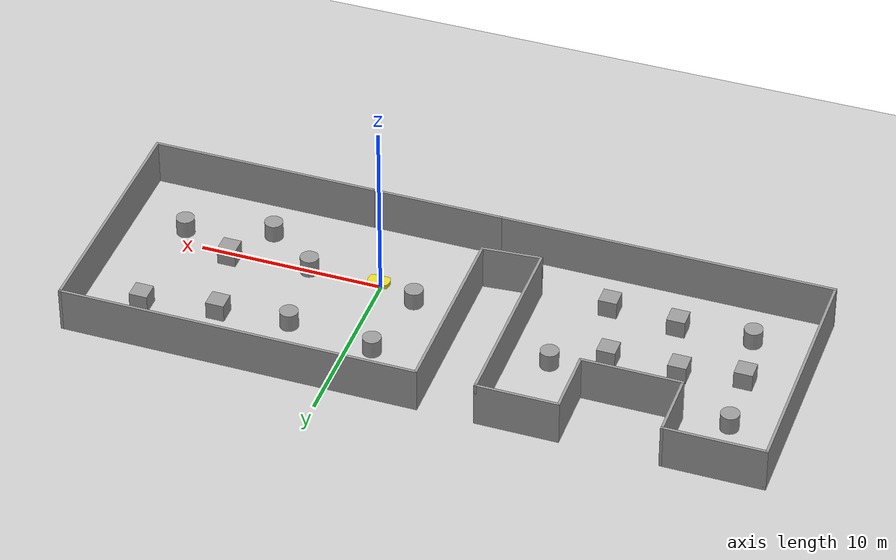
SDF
<sdf version="1.7">
 <world name="default">
  <light name="sun" type="directional">
   <pose>0 0 10 0 -0 0</pose>
   <diffuse>0.8 0.8 0.8 1</diffuse>
   <specular>0.2 0.2 0.2 1</specular>
   <attenuation>
    <range>1000</range>
    <constant>0.9</constant>
    <linear>0.01</linear>
    <quadratic>0.001</quadratic>
   </attenuation>
   <direction>-0.5 0.1 -0.9</direction>
   <spot><inner_angle>0</inner_angle><outer_angle>0</outer_angle><falloff>0</falloff></spot>
  </light>
  <model name="ground_plane">
   <static>1</static>
   <link name="link">
    <collision name="collision">
     <geometry><plane><normal>0 0 1</normal><size>100 100</size></plane></geometry>
     <surface><friction><ode><mu>100</mu><mu2>50</mu2></ode></friction></surface>
    </collision>
    <visual name="visual">
     <cast_shadows>0</cast_shadows>
     <geometry><plane><normal>0 0 1</normal><size>100 100</size></plane></geometry>
     <material>
      <script><uri>file://media/materials/scripts/gazebo.material</uri><name>Gazebo/Grey</name></script>
     </material>
    </visual>
   </link>
  </model>
  <gravity>0 0 -9.8</gravity>
  <magnetic_field>6e-06 2.3e-05 -4.2e-05</magnetic_field>
  <atmosphere type="adiabatic"/>
  <physics type="ode">
   <max_step_size>0.001</max_step_size>
   <real_time_factor>1</real_time_factor>
   <real_time_update_rate>1000</real_time_update_rate>
  </physics>
  <scene><ambient>0.4 0.4 0.4 1</ambient><background>0.7 0.7 0.7 1</background><shadows>1</shadows></scene>
  <audio><device>default</device></audio>
  <spherical_coordinates>
   <surface_model>EARTH_WGS84</surface_model>
   <latitude_deg>0</latitude_deg>
   <longitude_deg>0</longitude_deg>
   <elevation>0</elevation>
   <heading_deg>0</heading_deg>
  </spherical_coordinates>
  <model name="my_bot">
   <link name="base_footprint">
    <inertial>
     <pose>-0 -0 0.135442 0 -0 0</pose>
     <mass>202.122</mass>
     <inertia>
      <ixx>9.54112</ixx>
      <ixy>-9.2157e-16</ixy>
      <ixz>-5.72723e-16</ixz>
      <iyy>22.6678</iyy>
      <iyz>-4.76165e-17</iyz>
      <izz>30.0778</izz>
     </inertia>
    </inertial>
    <collision name="base_footprint_fixed_joint_lump__base_link_collision">
     <geometry>
      <mesh>
       <scale>1 1 1</scale>
       <uri>file:///home/ender/Desktop/dev_ws/install/my_bot/share/my_bot/meshes/base_link.STL</uri>
      </mesh>
     </geometry>
    </collision>
    <collision name="base_footprint_fixed_joint_lump__lidar_link_collision_1">
     <pose>0 0 0.29909 0 -0 0</pose>
     <geometry>
      <mesh>
       <scale>1 1 1</scale>
       <uri>file:///home/ender/Desktop/dev_ws/install/my_bot/share/my_bot/meshes/lidar_link.STL</uri>
      </mesh>
     </geometry>
    </collision>
    <visual name="base_footprint_fixed_joint_lump__base_link_visual">
     <geometry>
      <mesh>
       <scale>1 1 1</scale>
       <uri>file:///home/ender/Desktop/dev_ws/install/my_bot/share/my_bot/meshes/base_link.STL</uri>
      </mesh>
     </geometry>
     <material>
      <script><name>Gazebo/Yellow</name><uri>file://media/materials/scripts/gazebo.material</uri></script>
     </material>
    </visual>
    <visual name="base_footprint_fixed_joint_lump__lidar_link_visual_1">
     <pose>0 0 0.29909 0 -0 0</pose>
     <geometry>
      <mesh>
       <scale>1 1 1</scale>
       <uri>file:///home/ender/Desktop/dev_ws/install/my_bot/share/my_bot/meshes/lidar_link.STL</uri>
      </mesh>
     </geometry>
     <material>
      <script><name>Gazebo/Orange</name><uri>file://media/materials/scripts/gazebo.material</uri></script>
     </material>
    </visual>
    <sensor name="front_hokuyo_sensor" type="ray">
     <visualize>0</visualize>
     <update_rate>10</update_rate>
     <ray>
      <scan>
       <horizontal>
        <samples>360</samples>
        <min_angle>-3.14</min_angle>
        <max_angle>3.14</max_angle>
        <resolution>1</resolution>
       </horizontal>
       <vertical><samples>1</samples><min_angle>0</min_angle><max_angle>0</max_angle></vertical>
      </scan>
      <range><min>0.3</min><max>12</max></range>
     </ray>
     <plugin name="gazebo_ros_head_hokuyo_controller" filename="libgazebo_ros_ray_sensor.so">
      <ros><argument>~/out:=scan</argument></ros>
      <output_type>sensor_msgs/LaserScan</output_type>
      <frame_name>lidar_link</frame_name>
     </plugin>
     <pose>0 0 0.29909 0 -0 0</pose>
    </sensor>
   </link>
   <joint name="leftwheel" type="revolute">
    <pose relative_to="base_footprint">0 0.406 0.018995 0 -0 0</pose>
    <parent>base_footprint</parent>
    <child>left_wheel</child>
    <axis>
     <xyz>0 1 0</xyz>
     <limit><lower>-1e+16</lower><upper>1e+16</upper></limit>
     <dynamics>
      <damping>0</damping>
      <friction>0.1</friction>
      <spring_reference>0</spring_reference>
      <spring_stiffness>0</spring_stiffness>
     </dynamics>
    </axis>
   </joint>
   <link name="left_wheel">
    <pose relative_to="leftwheel">0 0 0 0 -0 0</pose>
    <inertial>
     <pose>0 -0.02 0 0 -0 0</pose>
     <mass>0.80425</mass>
     <inertia>
      <ixx>0.001394</ixx>
      <ixy>6.1901e-35</ixy>
      <ixz>7.1778e-51</ixz>
      <iyy>0.0025736</iyy>
      <iyz>2.4867e-36</iyz>
      <izz>0.001394</izz>
     </inertia>
    </inertial>
    <collision name="left_wheel_collision">
     <geometry>
      <mesh>
       <scale>1 1 1</scale>
       <uri>file:///home/ender/Desktop/dev_ws/install/my_bot/share/my_bot/meshes/left_wheel.STL</uri>
      </mesh>
     </geometry>
    </collision>
    <visual name="left_wheel_visual">
     <geometry>
      <mesh>
       <scale>1 1 1</scale>
       <uri>file:///home/ender/Desktop/dev_ws/install/my_bot/share/my_bot/meshes/left_wheel.STL</uri>
      </mesh>
     </geometry>
     <material>
      <script><name>Gazebo/Black</name><uri>file://media/materials/scripts/gazebo.material</uri></script>
     </material>
    </visual>
   </link>
   <joint name="rightwheel" type="revolute">
    <pose relative_to="base_footprint">0 -0.406 0.018995 0 -0 0</pose>
    <parent>base_footprint</parent>
    <child>right_wheel</child>
    <axis>
     <xyz>0 1 0</xyz>
     <limit><lower>-1e+16</lower><upper>1e+16</upper></limit>
     <dynamics>
      <damping>0</damping>
      <friction>0.1</friction>
      <spring_reference>0</spring_reference>
      <spring_stiffness>0</spring_stiffness>
     </dynamics>
    </axis>
   </joint>
   <link name="right_wheel">
    <pose relative_to="rightwheel">0 0 0 0 -0 0</pose>
    <inertial>
     <pose>0 0.02 0 0 -0 0</pose>
     <mass>0.80425</mass>
     <inertia>
      <ixx>0.001394</ixx>
      <ixy>6.1901e-35</ixy>
      <ixz>7.1778e-51</ixz>
      <iyy>0.0025736</iyy>
      <iyz>2.4867e-36</iyz>
      <izz>0.001394</izz>
     </inertia>
    </inertial>
    <collision name="right_wheel_collision">
     <geometry>
      <mesh>
       <scale>1 1 1</scale>
       <uri>file:///home/ender/Desktop/dev_ws/install/my_bot/share/my_bot/meshes/right_wheel.STL</uri>
      </mesh>
     </geometry>
    </collision>
    <visual name="right_wheel_visual">
     <geometry>
      <mesh>
       <scale>1 1 1</scale>
       <uri>file:///home/ender/Desktop/dev_ws/install/my_bot/share/my_bot/meshes/right_wheel.STL</uri>
      </mesh>
     </geometry>
     <material>
      <script><name>Gazebo/Black</name><uri>file://media/materials/scripts/gazebo.material</uri></script>
     </material>
    </visual>
   </link>
   <static>0</static>
   <plugin name="diff_drive" filename="libgazebo_ros_diff_drive.so">
    <left_joint>leftwheel</left_joint>
    <right_joint>rightwheel</right_joint>
    <wheel_separation>0.812</wheel_separation>
    <wheel_diameter>0.16</wheel_diameter>
    <max_wheel_acceleration>50.0</max_wheel_acceleration>
    <max_wheel_torque>200</max_wheel_torque>
    <odometry_frame>odom</odometry_frame>
    <robot_base_frame>base_footprint</robot_base_frame>
    <publish_odom>1</publish_odom>
    <publish_odom_tf>1</publish_odom_tf>
    <publish_wheel_tf>1</publish_wheel_tf>
   </plugin>
   <pose>0.168629 -0.196517 0.06065 1.7e-05 0.002946 0.026211</pose>
  </model>
  <model name="Untitled">
   <pose>-4.35455 1.88069 0 0 -0 0</pose>
   <link name="Wall_1">
    <collision name="Wall_1_Collision">
     <geometry><box><size>10.5 0.15 2.5</size></box></geometry>
     <pose>0 0 1.25 0 -0 0</pose>
    </collision>
    <visual name="Wall_1_Visual">
     <pose>0 0 1.25 0 -0 0</pose>
     <geometry><box><size>10.5 0.15 2.5</size></box></geometry>
     <material>
      <script><uri>file://media/materials/scripts/gazebo.material</uri><name>Gazebo/Grey</name></script>
      <ambient>1 1 1 1</ambient>
     </material>
     <meta><layer>0</layer></meta>
    </visual>
    <pose>-0.575 1.375 0 0 -0 1.5708</pose>
   </link>
   <link name="Wall_10">
    <collision name="Wall_10_Collision">
     <geometry><box><size>5.5 0.15 2.5</size></box></geometry>
     <pose>0 0 1.25 0 -0 0</pose>
    </collision>
    <visual name="Wall_10_Visual">
     <pose>0 0 1.25 0 -0 0</pose>
     <geometry><box><size>5.5 0.15 2.5</size></box></geometry>
     <material>
      <script><uri>file://media/materials/scripts/gazebo.material</uri><name>Gazebo/Grey</name></script>
      <ambient>1 1 1 1</ambient>
     </material>
     <meta><layer>0</layer></meta>
    </visual>
    <pose>-10.75 2.95 0 0 -0 0</pose>
   </link>
   <link name="Wall_11">
    <collision name="Wall_11_Collision">
     <geometry><box><size>3.75 0.15 2.5</size></box></geometry>
     <pose>0 0 1.25 0 -0 0</pose>
    </collision>
    <visual name="Wall_11_Visual">
     <pose>0 0 1.25 0 -0 0</pose>
     <geometry><box><size>3.75 0.15 2.5</size></box></geometry>
     <material>
      <script><uri>file://media/materials/scripts/gazebo.material</uri><name>Gazebo/Grey</name></script>
      <ambient>1 1 1 1</ambient>
     </material>
     <meta><layer>0</layer></meta>
    </visual>
    <pose>-8.075 4.75 0 0 -0 1.5708</pose>
   </link>
   <link name="Wall_12">
    <collision name="Wall_12_Collision">
     <geometry><box><size>4.5 0.15 2.5</size></box></geometry>
     <pose>0 0 1.25 0 -0 0</pose>
    </collision>
    <visual name="Wall_12_Visual">
     <pose>0 0 1.25 0 -0 0</pose>
     <geometry><box><size>4.5 0.15 2.5</size></box></geometry>
     <material>
      <script><uri>file://media/materials/scripts/gazebo.material</uri><name>Gazebo/Grey</name></script>
      <ambient>1 1 1 1</ambient>
     </material>
     <meta><layer>0</layer></meta>
    </visual>
    <pose>-5.9 6.55 0 0 -0 0</pose>
   </link>
   <link name="Wall_13">
    <collision name="Wall_13_Collision">
     <geometry><box><size>10.75 0.15 2.5</size></box></geometry>
     <pose>0 0 1.25 0 -0 0</pose>
    </collision>
    <visual name="Wall_13_Visual">
     <pose>0 0 1.25 0 -0 0</pose>
     <geometry><box><size>10.75 0.15 2.5</size></box></geometry>
     <material>
      <script><uri>file://media/materials/scripts/gazebo.material</uri><name>Gazebo/Grey</name></script>
      <ambient>1 1 1 1</ambient>
     </material>
     <meta><layer>0</layer></meta>
    </visual>
    <pose>-3.725 1.25 0 0 -0 -1.5708</pose>
   </link>
   <link name="Wall_14">
    <collision name="Wall_14_Collision">
     <geometry><box><size>3.30991 0.15 2.5</size></box></geometry>
     <pose>0 0 1.25 0 -0 0</pose>
    </collision>
    <visual name="Wall_14_Visual">
     <pose>0 0 1.25 0 -0 0</pose>
     <geometry><box><size>3.30991 0.15 2.5</size></box></geometry>
     <material>
      <script><uri>file://media/materials/scripts/gazebo.material</uri><name>Gazebo/Grey</name></script>
      <ambient>1 1 1 1</ambient>
     </material>
     <meta><layer>0</layer></meta>
    </visual>
    <pose>-2.15 -3.925 0 0 -0 0.079199</pose>
   </link>
   <link name="Wall_2">
    <collision name="Wall_2_Collision">
     <geometry><box><size>19.5 0.15 2.5</size></box></geometry>
     <pose>0 0 1.25 0 -0 0</pose>
    </collision>
    <visual name="Wall_2_Visual">
     <pose>0 0 1.25 0 -0 0</pose>
     <geometry><box><size>19.5 0.15 2.5</size></box></geometry>
     <material>
      <script><uri>file://media/materials/scripts/gazebo.material</uri><name>Gazebo/Grey</name></script>
      <ambient>1 1 1 1</ambient>
     </material>
     <meta><layer>0</layer></meta>
    </visual>
    <pose>9.1 6.55 0 0 -0 0</pose>
   </link>
   <link name="Wall_3">
    <collision name="Wall_3_Collision">
     <geometry><box><size>13.25 0.15 2.5</size></box></geometry>
     <pose>0 0 1.25 0 -0 0</pose>
    </collision>
    <visual name="Wall_3_Visual">
     <pose>0 0 1.25 0 -0 0</pose>
     <geometry><box><size>13.25 0.15 2.5</size></box></geometry>
     <material>
      <script><uri>file://media/materials/scripts/gazebo.material</uri><name>Gazebo/Grey</name></script>
      <ambient>1 1 1 1</ambient>
     </material>
     <meta><layer>0</layer></meta>
    </visual>
    <pose>18.775 0 0 0 -0 -1.5708</pose>
   </link>
   <link name="Wall_4">
    <collision name="Wall_4_Collision">
     <geometry><box><size>12.5 0.15 2.5</size></box></geometry>
     <pose>0 0 1.25 0 -0 0</pose>
    </collision>
    <visual name="Wall_4_Visual">
     <pose>0 0 1.25 0 -0 0</pose>
     <geometry><box><size>12.5 0.15 2.5</size></box></geometry>
     <material>
      <script><uri>file://media/materials/scripts/gazebo.material</uri><name>Gazebo/Grey</name></script>
      <ambient>1 1 1 1</ambient>
     </material>
     <meta><layer>0</layer></meta>
    </visual>
    <pose>12.6 -6.55 0 0 -0 3.14159</pose>
   </link>
   <link name="Wall_5">
    <collision name="Wall_5_Collision">
     <geometry><box><size>7.25 0.15 2.5</size></box></geometry>
     <pose>0 0 1.25 0 -0 0</pose>
    </collision>
    <visual name="Wall_5_Visual">
     <pose>0 0 1.25 0 -0 0</pose>
     <geometry><box><size>7.25 0.15 2.5</size></box></geometry>
     <material>
      <script><uri>file://media/materials/scripts/gazebo.material</uri><name>Gazebo/Grey</name></script>
      <ambient>1 1 1 1</ambient>
     </material>
     <meta><layer>0</layer></meta>
    </visual>
    <pose>2.875 -6.55 0 0 -0 3.14159</pose>
   </link>
   <link name="Wall_6">
    <collision name="Wall_6_Collision">
     <geometry><box><size>18.25 0.15 2.5</size></box></geometry>
     <pose>0 0 1.25 0 -0 0</pose>
    </collision>
    <visual name="Wall_6_Visual">
     <pose>0 0 1.25 0 -0 0</pose>
     <geometry><box><size>18.25 0.15 2.5</size></box></geometry>
     <material>
      <script><uri>file://media/materials/scripts/gazebo.material</uri><name>Gazebo/Grey</name></script>
      <ambient>1 1 1 1</ambient>
     </material>
     <meta><layer>0</layer></meta>
    </visual>
    <pose>-9.725 -6.55 0 0 -0 3.14159</pose>
   </link>
   <link name="Wall_7">
    <collision name="Wall_7_Collision">
     <geometry><box><size>13.25 0.15 2.5</size></box></geometry>
     <pose>0 0 1.25 0 -0 0</pose>
    </collision>
    <visual name="Wall_7_Visual">
     <pose>0 0 1.25 0 -0 0</pose>
     <geometry><box><size>13.25 0.15 2.5</size></box></geometry>
     <material>
      <script><uri>file://media/materials/scripts/gazebo.material</uri><name>Gazebo/Grey</name></script>
      <ambient>1 1 1 1</ambient>
     </material>
     <meta><layer>0</layer></meta>
    </visual>
    <pose>-18.775 0 0 0 -0 1.5708</pose>
   </link>
   <link name="Wall_8">
    <collision name="Wall_8_Collision">
     <geometry><box><size>5.5 0.15 2.5</size></box></geometry>
     <pose>0 0 1.25 0 -0 0</pose>
    </collision>
    <visual name="Wall_8_Visual">
     <pose>0 0 1.25 0 -0 0</pose>
     <geometry><box><size>5.5 0.15 2.5</size></box></geometry>
     <material>
      <script><uri>file://media/materials/scripts/gazebo.material</uri><name>Gazebo/Grey</name></script>
      <ambient>1 1 1 1</ambient>
     </material>
     <meta><layer>0</layer></meta>
    </visual>
    <pose>-16.1 6.55 0 0 -0 0</pose>
   </link>
   <link name="Wall_9">
    <collision name="Wall_9_Collision">
     <geometry><box><size>3.75 0.15 2.5</size></box></geometry>
     <pose>0 0 1.25 0 -0 0</pose>
    </collision>
    <visual name="Wall_9_Visual">
     <pose>0 0 1.25 0 -0 0</pose>
     <geometry><box><size>3.75 0.15 2.5</size></box></geometry>
     <material>
      <script><uri>file://media/materials/scripts/gazebo.material</uri><name>Gazebo/Grey</name></script>
      <ambient>1 1 1 1</ambient>
     </material>
     <meta><layer>0</layer></meta>
    </visual>
    <pose>-13.425 4.75 0 0 -0 -1.5708</pose>
   </link>
   <static>1</static>
  </model>
  <model name="unit_box">
   <pose>7.2333 4.76616 0.499995 1e-05 -0 0</pose>
   <link name="link">
    <inertial>
     <mass>1</mass>
     <inertia>
      <ixx>0.166667</ixx>
      <ixy>0</ixy>
      <ixz>0</ixz>
      <iyy>0.166667</iyy>
      <iyz>0</iyz>
      <izz>0.166667</izz>
     </inertia>
    </inertial>
    <collision name="collision"><geometry><box><size>1 1 1</size></box></geometry></collision>
    <visual name="visual">
     <geometry><box><size>1 1 1</size></box></geometry>
     <material>
      <script><name>Gazebo/Grey</name><uri>file://media/materials/scripts/gazebo.material</uri></script>
     </material>
    </visual>
   </link>
  </model>
  <model name="unit_box_0">
   <pose>8.31648 0.42598 0.499995 0 -1e-05 0</pose>
   <link name="link">
    <inertial>
     <mass>1</mass>
     <inertia>
      <ixx>0.166667</ixx>
      <ixy>0</ixy>
      <ixz>0</ixz>
      <iyy>0.166667</iyy>
      <iyz>0</iyz>
      <izz>0.166667</izz>
     </inertia>
    </inertial>
    <collision name="collision"><geometry><box><size>1 1 1</size></box></geometry></collision>
    <visual name="visual">
     <geometry><box><size>1 1 1</size></box></geometry>
     <material>
      <script><name>Gazebo/Grey</name><uri>file://media/materials/scripts/gazebo.material</uri></script>
     </material>
    </visual>
   </link>
  </model>
  <model name="unit_cylinder">
   <pose>-1.32685 5.01169 0.499992 -3e-06 3e-06 0</pose>
   <link name="link">
    <inertial>
     <mass>1</mass>
     <inertia><ixx>0.145833</ixx><ixy>0</ixy><ixz>0</ixz><iyy>0.145833</iyy><iyz>0</iyz><izz>0.125</izz></inertia>
    </inertial>
    <collision name="collision">
     <geometry><cylinder><radius>0.5</radius><length>1</length></cylinder></geometry>
    </collision>
    <visual name="visual">
     <geometry><cylinder><radius>0.5</radius><length>1</length></cylinder></geometry>
     <material>
      <script><name>Gazebo/Grey</name><uri>file://media/materials/scripts/gazebo.material</uri></script>
     </material>
    </visual>
   </link>
  </model>
  <model name="unit_cylinder_0">
   <pose>3.42659 4.43957 0.499992 -3e-06 3e-06 0</pose>
   <link name="link">
    <inertial>
     <mass>1</mass>
     <inertia><ixx>0.145833</ixx><ixy>0</ixy><ixz>0</ixz><iyy>0.145833</iyy><iyz>0</iyz><izz>0.125</izz></inertia>
    </inertial>
    <collision name="collision">
     <geometry><cylinder><radius>0.5</radius><length>1</length></cylinder></geometry>
    </collision>
    <visual name="visual">
     <geometry><cylinder><radius>0.5</radius><length>1</length></cylinder></geometry>
     <material>
      <script><name>Gazebo/Grey</name><uri>file://media/materials/scripts/gazebo.material</uri></script>
     </material>
    </visual>
   </link>
  </model>
  <model name="unit_cylinder_1">
   <pose>3.98187 -0.013738 0.499992 -3e-06 3e-06 0</pose>
   <link name="link">
    <inertial>
     <mass>1</mass>
     <inertia><ixx>0.145833</ixx><ixy>0</ixy><ixz>0</ixz><iyy>0.145833</iyy><iyz>0</iyz><izz>0.125</izz></inertia>
    </inertial>
    <collision name="collision">
     <geometry><cylinder><radius>0.5</radius><length>1</length></cylinder></geometry>
    </collision>
    <visual name="visual">
     <geometry><cylinder><radius>0.5</radius><length>1</length></cylinder></geometry>
     <material>
      <script><name>Gazebo/Grey</name><uri>file://media/materials/scripts/gazebo.material</uri></script>
     </material>
    </visual>
   </link>
  </model>
  <model name="unit_cylinder_2">
   <pose>-2.08273 0.692973 0.499997 3e-06 -4e-06 0</pose>
   <link name="link">
    <inertial>
     <mass>1</mass>
     <inertia><ixx>0.145833</ixx><ixy>0</ixy><ixz>0</ixz><iyy>0.145833</iyy><iyz>0</iyz><izz>0.125</izz></inertia>
    </inertial>
    <collision name="collision">
     <geometry><cylinder><radius>0.5</radius><length>1</length></cylinder></geometry>
    </collision>
    <visual name="visual">
     <geometry><cylinder><radius>0.5</radius><length>1</length></cylinder></geometry>
     <material>
      <script><name>Gazebo/Grey</name><uri>file://media/materials/scripts/gazebo.material</uri></script>
     </material>
    </visual>
   </link>
  </model>
  <model name="unit_box_1">
   <pose>-15.6594 -1.74627 0.499995 0 -1e-05 0</pose>
   <link name="link">
    <inertial>
     <mass>1</mass>
     <inertia>
      <ixx>0.166667</ixx>
      <ixy>0</ixy>
      <ixz>0</ixz>
      <iyy>0.166667</iyy>
      <iyz>0</iyz>
      <izz>0.166667</izz>
     </inertia>
    </inertial>
    <collision name="collision"><geometry><box><size>1 1 1</size></box></geometry></collision>
    <visual name="visual">
     <geometry><box><size>1 1 1</size></box></geometry>
     <material>
      <script><name>Gazebo/Grey</name><uri>file://media/materials/scripts/gazebo.material</uri></script>
     </material>
    </visual>
   </link>
  </model>
  <model name="unit_box_2">
   <pose>-12.9773 1.73017 0.499995 0 -1e-05 0</pose>
   <link name="link">
    <inertial>
     <mass>1</mass>
     <inertia>
      <ixx>0.166667</ixx>
      <ixy>0</ixy>
      <ixz>0</ixz>
      <iyy>0.166667</iyy>
      <iyz>0</iyz>
      <izz>0.166667</izz>
     </inertia>
    </inertial>
    <collision name="collision"><geometry><box><size>1 1 1</size></box></geometry></collision>
    <visual name="visual">
     <geometry><box><size>1 1 1</size></box></geometry>
     <material>
      <script><name>Gazebo/Grey</name><uri>file://media/materials/scripts/gazebo.material</uri></script>
     </material>
    </visual>
   </link>
  </model>
  <model name="unit_box_3">
   <pose>-20.0605 1.09815 0.499995 -1e-05 -0 -0</pose>
   <link name="link">
    <inertial>
     <mass>1</mass>
     <inertia>
      <ixx>0.166667</ixx>
      <ixy>0</ixy>
      <ixz>0</ixz>
      <iyy>0.166667</iyy>
      <iyz>0</iyz>
      <izz>0.166667</izz>
     </inertia>
    </inertial>
    <collision name="collision"><geometry><box><size>1 1 1</size></box></geometry></collision>
    <visual name="visual">
     <geometry><box><size>1 1 1</size></box></geometry>
     <material>
      <script><name>Gazebo/Grey</name><uri>file://media/materials/scripts/gazebo.material</uri></script>
     </material>
    </visual>
   </link>
  </model>
  <model name="unit_box_4">
   <pose>-16.7347 1.67524 0.499995 0 -1e-05 0</pose>
   <link name="link">
    <inertial>
     <mass>1</mass>
     <inertia>
      <ixx>0.166667</ixx>
      <ixy>0</ixy>
      <ixz>0</ixz>
      <iyy>0.166667</iyy>
      <iyz>0</iyz>
      <izz>0.166667</izz>
     </inertia>
    </inertial>
    <collision name="collision"><geometry><box><size>1 1 1</size></box></geometry></collision>
    <visual name="visual">
     <geometry><box><size>1 1 1</size></box></geometry>
     <material>
      <script><name>Gazebo/Grey</name><uri>file://media/materials/scripts/gazebo.material</uri></script>
     </material>
    </visual>
   </link>
  </model>
  <model name="unit_cylinder_3">
   <pose>-20.2529 4.65173 0.499998 3e-06 -3e-06 0</pose>
   <link name="link">
    <inertial>
     <mass>1</mass>
     <inertia><ixx>0.145833</ixx><ixy>0</ixy><ixz>0</ixz><iyy>0.145833</iyy><iyz>0</iyz><izz>0.125</izz></inertia>
    </inertial>
    <collision name="collision">
     <geometry><cylinder><radius>0.5</radius><length>1</length></cylinder></geometry>
    </collision>
    <visual name="visual">
     <geometry><cylinder><radius>0.5</radius><length>1</length></cylinder></geometry>
     <material>
      <script><name>Gazebo/Grey</name><uri>file://media/materials/scripts/gazebo.material</uri></script>
     </material>
    </visual>
   </link>
  </model>
  <model name="unit_cylinder_4">
   <pose>-10.2408 3.02706 0.499998 3e-06 -3e-06 0</pose>
   <link name="link">
    <inertial>
     <mass>1</mass>
     <inertia><ixx>0.145833</ixx><ixy>0</ixy><ixz>0</ixz><iyy>0.145833</iyy><iyz>0</iyz><izz>0.125</izz></inertia>
    </inertial>
    <collision name="collision">
     <geometry><cylinder><radius>0.5</radius><length>1</length></cylinder></geometry>
    </collision>
    <visual name="visual">
     <geometry><cylinder><radius>0.5</radius><length>1</length></cylinder></geometry>
     <material>
      <script><name>Gazebo/Grey</name><uri>file://media/materials/scripts/gazebo.material</uri></script>
     </material>
    </visual>
   </link>
  </model>
  <model name="unit_box_5">
   <pose>11.258 5.38313 0.499995 -1e-05 -0 -0</pose>
   <link name="link">
    <inertial>
     <mass>1</mass>
     <inertia>
      <ixx>0.166667</ixx>
      <ixy>0</ixy>
      <ixz>0</ixz>
      <iyy>0.166667</iyy>
      <iyz>0</iyz>
      <izz>0.166667</izz>
     </inertia>
    </inertial>
    <collision name="collision"><geometry><box><size>1 1 1</size></box></geometry></collision>
    <visual name="visual">
     <geometry><box><size>1 1 1</size></box></geometry>
     <material>
      <script><name>Gazebo/Grey</name><uri>file://media/materials/scripts/gazebo.material</uri></script>
     </material>
    </visual>
   </link>
  </model>
  <model name="unit_cylinder_5">
   <pose>11.3723 -0.951859 0.499997 4e-06 3e-06 -0</pose>
   <link name="link">
    <inertial>
     <mass>1</mass>
     <inertia><ixx>0.145833</ixx><ixy>0</ixy><ixz>0</ixz><iyy>0.145833</iyy><iyz>0</iyz><izz>0.125</izz></inertia>
    </inertial>
    <collision name="collision">
     <geometry><cylinder><radius>0.5</radius><length>1</length></cylinder></geometry>
    </collision>
    <visual name="visual">
     <geometry><cylinder><radius>0.5</radius><length>1</length></cylinder></geometry>
     <material>
      <script><name>Gazebo/Grey</name><uri>file://media/materials/scripts/gazebo.material</uri></script>
     </material>
    </visual>
   </link>
  </model>
  <model name="unit_cylinder_6">
   <pose>6.80216 -2.15573 0.499998 3e-06 -2e-06 0</pose>
   <link name="link">
    <inertial>
     <mass>1</mass>
     <inertia><ixx>0.145833</ixx><ixy>0</ixy><ixz>0</ixz><iyy>0.145833</iyy><iyz>0</iyz><izz>0.125</izz></inertia>
    </inertial>
    <collision name="collision">
     <geometry><cylinder><radius>0.5</radius><length>1</length></cylinder></geometry>
    </collision>
    <visual name="visual">
     <geometry><cylinder><radius>0.5</radius><length>1</length></cylinder></geometry>
     <material>
      <script><name>Gazebo/Grey</name><uri>file://media/materials/scripts/gazebo.material</uri></script>
     </material>
    </visual>
   </link>
  </model>
  <model name="unit_box_6">
   <pose>-11.8913 -2.07595 0.499995 0 -1e-05 0</pose>
   <link name="link">
    <inertial>
     <mass>1</mass>
     <inertia>
      <ixx>0.166667</ixx>
      <ixy>0</ixy>
      <ixz>0</ixz>
      <iyy>0.166667</iyy>
      <iyz>0</iyz>
      <izz>0.166667</izz>
     </inertia>
    </inertial>
    <collision name="collision"><geometry><box><size>1 1 1</size></box></geometry></collision>
    <visual name="visual">
     <geometry><box><size>1 1 1</size></box></geometry>
     <material>
      <script><name>Gazebo/Grey</name><uri>file://media/materials/scripts/gazebo.material</uri></script>
     </material>
    </visual>
   </link>
  </model>
  <model name="unit_cylinder_7">
   <pose>-19.6103 -2.00737 0.499998 3e-06 -3e-06 0</pose>
   <link name="link">
    <inertial>
     <mass>1</mass>
     <inertia><ixx>0.145833</ixx><ixy>0</ixy><ixz>0</ixz><iyy>0.145833</iyy><iyz>0</iyz><izz>0.125</izz></inertia>
    </inertial>
    <collision name="collision">
     <geometry><cylinder><radius>0.5</radius><length>1</length></cylinder></geometry>
    </collision>
    <visual name="visual">
     <geometry><cylinder><radius>0.5</radius><length>1</length></cylinder></geometry>
     <material>
      <script><name>Gazebo/Grey</name><uri>file://media/materials/scripts/gazebo.material</uri></script>
     </material>
    </visual>
   </link>
  </model>
 </world>
</sdf>
